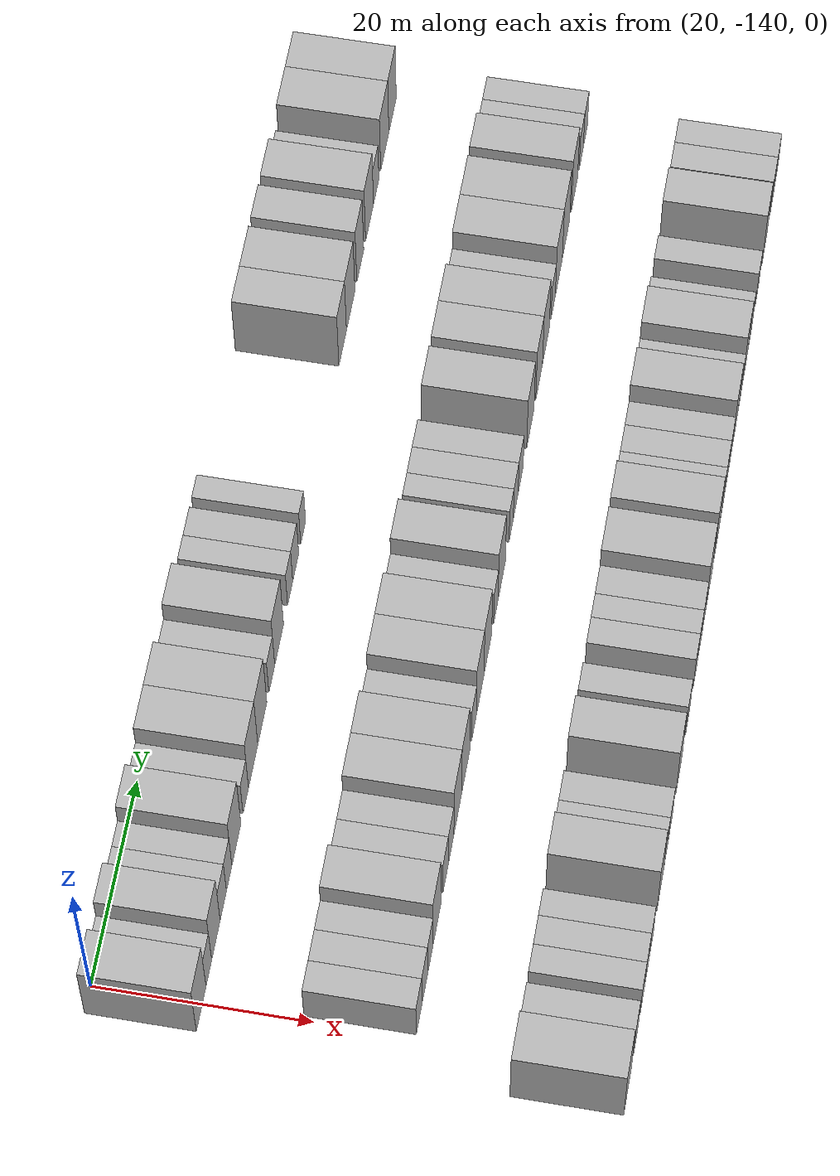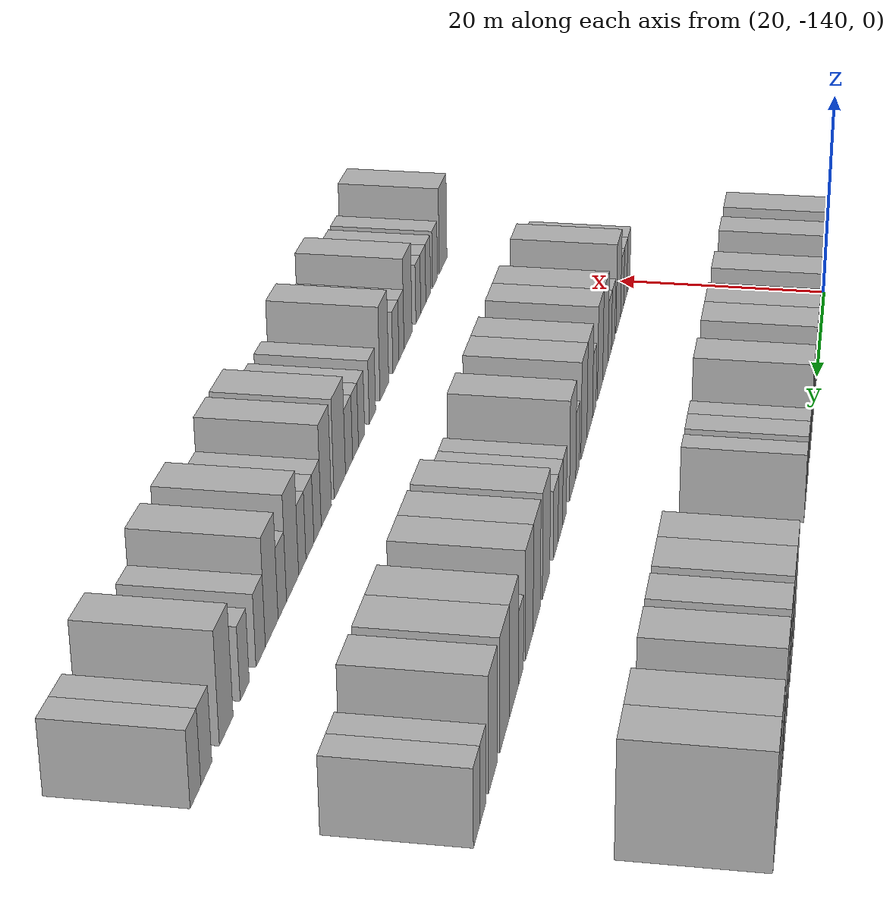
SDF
<sdf version="1.6">
 <world name="default">
  <model name="building_25">
   <static>1</static>
   <pose>25.0000 -140.4267 0 0.000000 0.000000 0.000000</pose>
   <link name="link">
    <pose>0 0 4.50 0 0 0</pose>
    <collision name="collision"><geometry><box><size>10.0000 4.2650 9.0000</size></box></geometry></collision>
    <visual name="visual">
     <cast_shadows>0</cast_shadows>
     <geometry><box><size>10.0000 4.2650 9.0000</size></box></geometry>
     <material>
      <script>
       <uri>model://HANNAS_wall/materials/scripts</uri>
       <uri>model://HANNAS_wall/materials/textures</uri>
       <name>vrc/HANNAS_wall</name>
      </script>
     </material>
    </visual>
   </link>
  </model>
  <model name="building_26">
   <static>1</static>
   <pose>25.0000 -137.0217 0 0.000000 0.000000 0.000000</pose>
   <link name="link">
    <pose>0 0 3.00 0 0 0</pose>
    <collision name="collision"><geometry><box><size>10.0000 2.5450 6.0000</size></box></geometry></collision>
    <visual name="visual">
     <cast_shadows>0</cast_shadows>
     <geometry><box><size>10.0000 2.5450 6.0000</size></box></geometry>
     <material>
      <script>
       <uri>model://HANNAS_wall/materials/scripts</uri>
       <uri>model://HANNAS_wall/materials/textures</uri>
       <name>vrc/HANNAS_wall</name>
      </script>
     </material>
    </visual>
   </link>
  </model>
  <model name="building_27">
   <static>1</static>
   <pose>25.0000 -133.8552 0 0.000000 0.000000 0.000000</pose>
   <link name="link">
    <pose>0 0 4.50 0 0 0</pose>
    <collision name="collision"><geometry><box><size>10.0000 3.7879 9.0000</size></box></geometry></collision>
    <visual name="visual">
     <cast_shadows>0</cast_shadows>
     <geometry><box><size>10.0000 3.7879 9.0000</size></box></geometry>
     <material>
      <script>
       <uri>model://HANNAS_wall/materials/scripts</uri>
       <uri>model://HANNAS_wall/materials/textures</uri>
       <name>vrc/HANNAS_wall</name>
      </script>
     </material>
    </visual>
   </link>
  </model>
  <model name="building_28">
   <static>1</static>
   <pose>25.0000 -130.5221 0 0.000000 0.000000 0.000000</pose>
   <link name="link">
    <pose>0 0 3.00 0 0 0</pose>
    <collision name="collision"><geometry><box><size>10.0000 2.8782 6.0000</size></box></geometry></collision>
    <visual name="visual">
     <cast_shadows>0</cast_shadows>
     <geometry><box><size>10.0000 2.8782 6.0000</size></box></geometry>
     <material>
      <script>
       <uri>model://HANNAS_wall/materials/scripts</uri>
       <uri>model://HANNAS_wall/materials/textures</uri>
       <name>vrc/HANNAS_wall</name>
      </script>
     </material>
    </visual>
   </link>
  </model>
  <model name="building_29">
   <static>1</static>
   <pose>25.0000 -127.8385 0 0.000000 0.000000 0.000000</pose>
   <link name="link">
    <pose>0 0 3.00 0 0 0</pose>
    <collision name="collision"><geometry><box><size>10.0000 2.4891 6.0000</size></box></geometry></collision>
    <visual name="visual">
     <cast_shadows>0</cast_shadows>
     <geometry><box><size>10.0000 2.4891 6.0000</size></box></geometry>
     <material>
      <script>
       <uri>model://HANNAS_wall/materials/scripts</uri>
       <uri>model://HANNAS_wall/materials/textures</uri>
       <name>vrc/HANNAS_wall</name>
      </script>
     </material>
    </visual>
   </link>
  </model>
  <model name="building_30">
   <static>1</static>
   <pose>25.0000 -124.5212 0 0.000000 0.000000 0.000000</pose>
   <link name="link">
    <pose>0 0 4.50 0 0 0</pose>
    <collision name="collision"><geometry><box><size>10.0000 4.1453 9.0000</size></box></geometry></collision>
    <visual name="visual">
     <cast_shadows>0</cast_shadows>
     <geometry><box><size>10.0000 4.1453 9.0000</size></box></geometry>
     <material>
      <script>
       <uri>model://HANNAS_wall/materials/scripts</uri>
       <uri>model://HANNAS_wall/materials/textures</uri>
       <name>vrc/HANNAS_wall</name>
      </script>
     </material>
    </visual>
   </link>
  </model>
  <model name="building_31">
   <static>1</static>
   <pose>25.0000 -120.1653 0 0.000000 0.000000 0.000000</pose>
   <link name="link">
    <pose>0 0 3.00 0 0 0</pose>
    <collision name="collision"><geometry><box><size>10.0000 2.5666 6.0000</size></box></geometry></collision>
    <visual name="visual">
     <cast_shadows>0</cast_shadows>
     <geometry><box><size>10.0000 2.5666 6.0000</size></box></geometry>
     <material>
      <script>
       <uri>model://HANNAS_wall/materials/scripts</uri>
       <uri>model://HANNAS_wall/materials/textures</uri>
       <name>vrc/HANNAS_wall</name>
      </script>
     </material>
    </visual>
   </link>
  </model>
  <model name="building_32">
   <static>1</static>
   <pose>25.0000 -116.7060 0 0.000000 0.000000 0.000000</pose>
   <link name="link">
    <pose>0 0 4.50 0 0 0</pose>
    <collision name="collision"><geometry><box><size>10.0000 4.3518 9.0000</size></box></geometry></collision>
    <visual name="visual">
     <cast_shadows>0</cast_shadows>
     <geometry><box><size>10.0000 4.3518 9.0000</size></box></geometry>
     <material>
      <script>
       <uri>model://HANNAS_wall/materials/scripts</uri>
       <uri>model://HANNAS_wall/materials/textures</uri>
       <name>vrc/HANNAS_wall</name>
      </script>
     </material>
    </visual>
   </link>
  </model>
  <model name="building_33">
   <static>1</static>
   <pose>25.0000 -112.3912 0 0.000000 0.000000 0.000000</pose>
   <link name="link">
    <pose>0 0 4.50 0 0 0</pose>
    <collision name="collision"><geometry><box><size>10.0000 4.2779 9.0000</size></box></geometry></collision>
    <visual name="visual">
     <cast_shadows>0</cast_shadows>
     <geometry><box><size>10.0000 4.2779 9.0000</size></box></geometry>
     <material>
      <script>
       <uri>model://HANNAS_wall/materials/scripts</uri>
       <uri>model://HANNAS_wall/materials/textures</uri>
       <name>vrc/HANNAS_wall</name>
      </script>
     </material>
    </visual>
   </link>
  </model>
  <model name="building_34">
   <static>1</static>
   <pose>25.0000 -107.8504 0 0.000000 0.000000 0.000000</pose>
   <link name="link">
    <pose>0 0 3.00 0 0 0</pose>
    <collision name="collision"><geometry><box><size>10.0000 2.8036 6.0000</size></box></geometry></collision>
    <visual name="visual">
     <cast_shadows>0</cast_shadows>
     <geometry><box><size>10.0000 2.8036 6.0000</size></box></geometry>
     <material>
      <script>
       <uri>model://HANNAS_wall/materials/scripts</uri>
       <uri>model://HANNAS_wall/materials/textures</uri>
       <name>vrc/HANNAS_wall</name>
      </script>
     </material>
    </visual>
   </link>
  </model>
  <model name="building_35">
   <static>1</static>
   <pose>25.0000 -104.3303 0 0.000000 0.000000 0.000000</pose>
   <link name="link">
    <pose>0 0 4.50 0 0 0</pose>
    <collision name="collision"><geometry><box><size>10.0000 4.2367 9.0000</size></box></geometry></collision>
    <visual name="visual">
     <cast_shadows>0</cast_shadows>
     <geometry><box><size>10.0000 4.2367 9.0000</size></box></geometry>
     <material>
      <script>
       <uri>model://HANNAS_wall/materials/scripts</uri>
       <uri>model://HANNAS_wall/materials/textures</uri>
       <name>vrc/HANNAS_wall</name>
      </script>
     </material>
    </visual>
   </link>
  </model>
  <model name="building_36">
   <static>1</static>
   <pose>25.0000 -98.9672 0 0.000000 0.000000 0.000000</pose>
   <link name="link">
    <pose>0 0 3.00 0 0 0</pose>
    <collision name="collision"><geometry><box><size>10.0000 2.4895 6.0000</size></box></geometry></collision>
    <visual name="visual">
     <cast_shadows>0</cast_shadows>
     <geometry><box><size>10.0000 2.4895 6.0000</size></box></geometry>
     <material>
      <script>
       <uri>model://HANNAS_wall/materials/scripts</uri>
       <uri>model://HANNAS_wall/materials/textures</uri>
       <name>vrc/HANNAS_wall</name>
      </script>
     </material>
    </visual>
   </link>
  </model>
  <model name="building_37">
   <static>1</static>
   <pose>25.0000 -96.2437 0 0.000000 0.000000 0.000000</pose>
   <link name="link">
    <pose>0 0 3.00 0 0 0</pose>
    <collision name="collision"><geometry><box><size>10.0000 2.9575 6.0000</size></box></geometry></collision>
    <visual name="visual">
     <cast_shadows>0</cast_shadows>
     <geometry><box><size>10.0000 2.9575 6.0000</size></box></geometry>
     <material>
      <script>
       <uri>model://HANNAS_wall/materials/scripts</uri>
       <uri>model://HANNAS_wall/materials/textures</uri>
       <name>vrc/HANNAS_wall</name>
      </script>
     </material>
    </visual>
   </link>
  </model>
  <model name="building_38">
   <static>1</static>
   <pose>25.0000 -92.5641 0 0.000000 0.000000 0.000000</pose>
   <link name="link">
    <pose>0 0 3.00 0 0 0</pose>
    <collision name="collision"><geometry><box><size>10.0000 2.4018 6.0000</size></box></geometry></collision>
    <visual name="visual">
     <cast_shadows>0</cast_shadows>
     <geometry><box><size>10.0000 2.4018 6.0000</size></box></geometry>
     <material>
      <script>
       <uri>model://HANNAS_wall/materials/scripts</uri>
       <uri>model://HANNAS_wall/materials/textures</uri>
       <name>vrc/HANNAS_wall</name>
      </script>
     </material>
    </visual>
   </link>
  </model>
  <model name="building_39">
   <static>1</static>
   <pose>25.0000 -72.4263 0 0.000000 0.000000 0.000000</pose>
   <link name="link">
    <pose>0 0 4.50 0 0 0</pose>
    <collision name="collision"><geometry><box><size>10.0000 3.9579 9.0000</size></box></geometry></collision>
    <visual name="visual">
     <cast_shadows>0</cast_shadows>
     <geometry><box><size>10.0000 3.9579 9.0000</size></box></geometry>
     <material>
      <script>
       <uri>model://HANNAS_wall/materials/scripts</uri>
       <uri>model://HANNAS_wall/materials/textures</uri>
       <name>vrc/HANNAS_wall</name>
      </script>
     </material>
    </visual>
   </link>
  </model>
  <model name="building_40">
   <static>1</static>
   <pose>25.0000 -68.2231 0 0.000000 0.000000 0.000000</pose>
   <link name="link">
    <pose>0 0 4.50 0 0 0</pose>
    <collision name="collision"><geometry><box><size>10.0000 4.4485 9.0000</size></box></geometry></collision>
    <visual name="visual">
     <cast_shadows>0</cast_shadows>
     <geometry><box><size>10.0000 4.4485 9.0000</size></box></geometry>
     <material>
      <script>
       <uri>model://HANNAS_wall/materials/scripts</uri>
       <uri>model://HANNAS_wall/materials/textures</uri>
       <name>vrc/HANNAS_wall</name>
      </script>
     </material>
    </visual>
   </link>
  </model>
  <model name="building_41">
   <static>1</static>
   <pose>25.0000 -63.1592 0 0.000000 0.000000 0.000000</pose>
   <link name="link">
    <pose>0 0 4.50 0 0 0</pose>
    <collision name="collision"><geometry><box><size>10.0000 3.6792 9.0000</size></box></geometry></collision>
    <visual name="visual">
     <cast_shadows>0</cast_shadows>
     <geometry><box><size>10.0000 3.6792 9.0000</size></box></geometry>
     <material>
      <script>
       <uri>model://HANNAS_wall/materials/scripts</uri>
       <uri>model://HANNAS_wall/materials/textures</uri>
       <name>vrc/HANNAS_wall</name>
      </script>
     </material>
    </visual>
   </link>
  </model>
  <model name="building_42">
   <static>1</static>
   <pose>25.0000 -58.2063 0 0.000000 0.000000 0.000000</pose>
   <link name="link">
    <pose>0 0 4.50 0 0 0</pose>
    <collision name="collision"><geometry><box><size>10.0000 4.2266 9.0000</size></box></geometry></collision>
    <visual name="visual">
     <cast_shadows>0</cast_shadows>
     <geometry><box><size>10.0000 4.2266 9.0000</size></box></geometry>
     <material>
      <script>
       <uri>model://HANNAS_wall/materials/scripts</uri>
       <uri>model://HANNAS_wall/materials/textures</uri>
       <name>vrc/HANNAS_wall</name>
      </script>
     </material>
    </visual>
   </link>
  </model>
  <model name="building_43">
   <static>1</static>
   <pose>25.0000 -54.6282 0 0.000000 0.000000 0.000000</pose>
   <link name="link">
    <pose>0 0 3.00 0 0 0</pose>
    <collision name="collision"><geometry><box><size>10.0000 2.9298 6.0000</size></box></geometry></collision>
    <visual name="visual">
     <cast_shadows>0</cast_shadows>
     <geometry><box><size>10.0000 2.9298 6.0000</size></box></geometry>
     <material>
      <script>
       <uri>model://HANNAS_wall/materials/scripts</uri>
       <uri>model://HANNAS_wall/materials/textures</uri>
       <name>vrc/HANNAS_wall</name>
      </script>
     </material>
    </visual>
   </link>
  </model>
  <model name="building_44">
   <static>1</static>
   <pose>25.0000 -49.9291 0 0.000000 0.000000 0.000000</pose>
   <link name="link">
    <pose>0 0 4.50 0 0 0</pose>
    <collision name="collision"><geometry><box><size>10.0000 4.4683 9.0000</size></box></geometry></collision>
    <visual name="visual">
     <cast_shadows>0</cast_shadows>
     <geometry><box><size>10.0000 4.4683 9.0000</size></box></geometry>
     <material>
      <script>
       <uri>model://HANNAS_wall/materials/scripts</uri>
       <uri>model://HANNAS_wall/materials/textures</uri>
       <name>vrc/HANNAS_wall</name>
      </script>
     </material>
    </visual>
   </link>
  </model>
  <model name="building_45">
   <static>1</static>
   <pose>25.0000 -45.6569 0 0.000000 0.000000 0.000000</pose>
   <link name="link">
    <pose>0 0 4.50 0 0 0</pose>
    <collision name="collision"><geometry><box><size>10.0000 4.0762 9.0000</size></box></geometry></collision>
    <visual name="visual">
     <cast_shadows>0</cast_shadows>
     <geometry><box><size>10.0000 4.0762 9.0000</size></box></geometry>
     <material>
      <script>
       <uri>model://HANNAS_wall/materials/scripts</uri>
       <uri>model://HANNAS_wall/materials/textures</uri>
       <name>vrc/HANNAS_wall</name>
      </script>
     </material>
    </visual>
   </link>
  </model>
  <model name="building_140">
   <static>1</static>
   <pose>44.0000 -138.1181 0 0.000000 0.000000 0.000000</pose>
   <link name="link">
    <pose>0 0 3.00 0 0 0</pose>
    <collision name="collision"><geometry><box><size>10.0000 2.8771 6.0000</size></box></geometry></collision>
    <visual name="visual">
     <cast_shadows>0</cast_shadows>
     <geometry><box><size>10.0000 2.8771 6.0000</size></box></geometry>
     <material>
      <script>
       <uri>model://HANNAS_wall/materials/scripts</uri>
       <uri>model://HANNAS_wall/materials/textures</uri>
       <name>vrc/HANNAS_wall</name>
      </script>
     </material>
    </visual>
   </link>
  </model>
  <model name="building_141">
   <static>1</static>
   <pose>44.0000 -135.2116 0 0.000000 0.000000 0.000000</pose>
   <link name="link">
    <pose>0 0 3.00 0 0 0</pose>
    <collision name="collision"><geometry><box><size>10.0000 2.9359 6.0000</size></box></geometry></collision>
    <visual name="visual">
     <cast_shadows>0</cast_shadows>
     <geometry><box><size>10.0000 2.9359 6.0000</size></box></geometry>
     <material>
      <script>
       <uri>model://HANNAS_wall/materials/scripts</uri>
       <uri>model://HANNAS_wall/materials/textures</uri>
       <name>vrc/HANNAS_wall</name>
      </script>
     </material>
    </visual>
   </link>
  </model>
  <model name="building_142">
   <static>1</static>
   <pose>44.0000 -132.3615 0 0.000000 0.000000 0.000000</pose>
   <link name="link">
    <pose>0 0 3.00 0 0 0</pose>
    <collision name="collision"><geometry><box><size>10.0000 2.7642 6.0000</size></box></geometry></collision>
    <visual name="visual">
     <cast_shadows>0</cast_shadows>
     <geometry><box><size>10.0000 2.7642 6.0000</size></box></geometry>
     <material>
      <script>
       <uri>model://HANNAS_wall/materials/scripts</uri>
       <uri>model://HANNAS_wall/materials/textures</uri>
       <name>vrc/HANNAS_wall</name>
      </script>
     </material>
    </visual>
   </link>
  </model>
  <model name="building_143">
   <static>1</static>
   <pose>44.0000 -128.9558 0 0.000000 0.000000 0.000000</pose>
   <link name="link">
    <pose>0 0 4.50 0 0 0</pose>
    <collision name="collision"><geometry><box><size>10.0000 4.0472 9.0000</size></box></geometry></collision>
    <visual name="visual">
     <cast_shadows>0</cast_shadows>
     <geometry><box><size>10.0000 4.0472 9.0000</size></box></geometry>
     <material>
      <script>
       <uri>model://HANNAS_wall/materials/scripts</uri>
       <uri>model://HANNAS_wall/materials/textures</uri>
       <name>vrc/HANNAS_wall</name>
      </script>
     </material>
    </visual>
   </link>
  </model>
  <model name="building_144">
   <static>1</static>
   <pose>44.0000 -124.5202 0 0.000000 0.000000 0.000000</pose>
   <link name="link">
    <pose>0 0 3.00 0 0 0</pose>
    <collision name="collision"><geometry><box><size>10.0000 2.8241 6.0000</size></box></geometry></collision>
    <visual name="visual">
     <cast_shadows>0</cast_shadows>
     <geometry><box><size>10.0000 2.8241 6.0000</size></box></geometry>
     <material>
      <script>
       <uri>model://HANNAS_wall/materials/scripts</uri>
       <uri>model://HANNAS_wall/materials/textures</uri>
       <name>vrc/HANNAS_wall</name>
      </script>
     </material>
    </visual>
   </link>
  </model>
  <model name="building_145">
   <static>1</static>
   <pose>44.0000 -121.6784 0 0.000000 0.000000 0.000000</pose>
   <link name="link">
    <pose>0 0 3.00 0 0 0</pose>
    <collision name="collision"><geometry><box><size>10.0000 2.8595 6.0000</size></box></geometry></collision>
    <visual name="visual">
     <cast_shadows>0</cast_shadows>
     <geometry><box><size>10.0000 2.8595 6.0000</size></box></geometry>
     <material>
      <script>
       <uri>model://HANNAS_wall/materials/scripts</uri>
       <uri>model://HANNAS_wall/materials/textures</uri>
       <name>vrc/HANNAS_wall</name>
      </script>
     </material>
    </visual>
   </link>
  </model>
  <model name="building_146">
   <static>1</static>
   <pose>44.0000 -118.1230 0 0.000000 0.000000 0.000000</pose>
   <link name="link">
    <pose>0 0 4.50 0 0 0</pose>
    <collision name="collision"><geometry><box><size>10.0000 4.2513 9.0000</size></box></geometry></collision>
    <visual name="visual">
     <cast_shadows>0</cast_shadows>
     <geometry><box><size>10.0000 4.2513 9.0000</size></box></geometry>
     <material>
      <script>
       <uri>model://HANNAS_wall/materials/scripts</uri>
       <uri>model://HANNAS_wall/materials/textures</uri>
       <name>vrc/HANNAS_wall</name>
      </script>
     </material>
    </visual>
   </link>
  </model>
  <model name="building_147">
   <static>1</static>
   <pose>44.0000 -113.9360 0 0.000000 0.000000 0.000000</pose>
   <link name="link">
    <pose>0 0 4.50 0 0 0</pose>
    <collision name="collision"><geometry><box><size>10.0000 4.1228 9.0000</size></box></geometry></collision>
    <visual name="visual">
     <cast_shadows>0</cast_shadows>
     <geometry><box><size>10.0000 4.1228 9.0000</size></box></geometry>
     <material>
      <script>
       <uri>model://HANNAS_wall/materials/scripts</uri>
       <uri>model://HANNAS_wall/materials/textures</uri>
       <name>vrc/HANNAS_wall</name>
      </script>
     </material>
    </visual>
   </link>
  </model>
  <model name="building_148">
   <static>1</static>
   <pose>44.0000 -109.5327 0 0.000000 0.000000 0.000000</pose>
   <link name="link">
    <pose>0 0 3.00 0 0 0</pose>
    <collision name="collision"><geometry><box><size>10.0000 2.6839 6.0000</size></box></geometry></collision>
    <visual name="visual">
     <cast_shadows>0</cast_shadows>
     <geometry><box><size>10.0000 2.6839 6.0000</size></box></geometry>
     <material>
      <script>
       <uri>model://HANNAS_wall/materials/scripts</uri>
       <uri>model://HANNAS_wall/materials/textures</uri>
       <name>vrc/HANNAS_wall</name>
      </script>
     </material>
    </visual>
   </link>
  </model>
  <model name="building_149">
   <static>1</static>
   <pose>44.0000 -106.1340 0 0.000000 0.000000 0.000000</pose>
   <link name="link">
    <pose>0 0 4.50 0 0 0</pose>
    <collision name="collision"><geometry><box><size>10.0000 4.1134 9.0000</size></box></geometry></collision>
    <visual name="visual">
     <cast_shadows>0</cast_shadows>
     <geometry><box><size>10.0000 4.1134 9.0000</size></box></geometry>
     <material>
      <script>
       <uri>model://HANNAS_wall/materials/scripts</uri>
       <uri>model://HANNAS_wall/materials/textures</uri>
       <name>vrc/HANNAS_wall</name>
      </script>
     </material>
    </visual>
   </link>
  </model>
  <model name="building_150">
   <static>1</static>
   <pose>44.0000 -101.9868 0 0.000000 0.000000 0.000000</pose>
   <link name="link">
    <pose>0 0 4.50 0 0 0</pose>
    <collision name="collision"><geometry><box><size>10.0000 4.1810 9.0000</size></box></geometry></collision>
    <visual name="visual">
     <cast_shadows>0</cast_shadows>
     <geometry><box><size>10.0000 4.1810 9.0000</size></box></geometry>
     <material>
      <script>
       <uri>model://HANNAS_wall/materials/scripts</uri>
       <uri>model://HANNAS_wall/materials/textures</uri>
       <name>vrc/HANNAS_wall</name>
      </script>
     </material>
    </visual>
   </link>
  </model>
  <model name="building_151">
   <static>1</static>
   <pose>44.0000 -97.6276 0 0.000000 0.000000 0.000000</pose>
   <link name="link">
    <pose>0 0 3.00 0 0 0</pose>
    <collision name="collision"><geometry><box><size>10.0000 2.5373 6.0000</size></box></geometry></collision>
    <visual name="visual">
     <cast_shadows>0</cast_shadows>
     <geometry><box><size>10.0000 2.5373 6.0000</size></box></geometry>
     <material>
      <script>
       <uri>model://HANNAS_wall/materials/scripts</uri>
       <uri>model://HANNAS_wall/materials/textures</uri>
       <name>vrc/HANNAS_wall</name>
      </script>
     </material>
    </visual>
   </link>
  </model>
  <model name="building_152">
   <static>1</static>
   <pose>44.0000 -94.3004 0 0.000000 0.000000 0.000000</pose>
   <link name="link">
    <pose>0 0 4.50 0 0 0</pose>
    <collision name="collision"><geometry><box><size>10.0000 4.1171 9.0000</size></box></geometry></collision>
    <visual name="visual">
     <cast_shadows>0</cast_shadows>
     <geometry><box><size>10.0000 4.1171 9.0000</size></box></geometry>
     <material>
      <script>
       <uri>model://HANNAS_wall/materials/scripts</uri>
       <uri>model://HANNAS_wall/materials/textures</uri>
       <name>vrc/HANNAS_wall</name>
      </script>
     </material>
    </visual>
   </link>
  </model>
  <model name="building_153">
   <static>1</static>
   <pose>44.0000 -89.0383 0 0.000000 0.000000 0.000000</pose>
   <link name="link">
    <pose>0 0 3.00 0 0 0</pose>
    <collision name="collision"><geometry><box><size>10.0000 2.4071 6.0000</size></box></geometry></collision>
    <visual name="visual">
     <cast_shadows>0</cast_shadows>
     <geometry><box><size>10.0000 2.4071 6.0000</size></box></geometry>
     <material>
      <script>
       <uri>model://HANNAS_wall/materials/scripts</uri>
       <uri>model://HANNAS_wall/materials/textures</uri>
       <name>vrc/HANNAS_wall</name>
      </script>
     </material>
    </visual>
   </link>
  </model>
  <model name="building_154">
   <static>1</static>
   <pose>44.0000 -86.4532 0 0.000000 0.000000 0.000000</pose>
   <link name="link">
    <pose>0 0 3.00 0 0 0</pose>
    <collision name="collision"><geometry><box><size>10.0000 2.7630 6.0000</size></box></geometry></collision>
    <visual name="visual">
     <cast_shadows>0</cast_shadows>
     <geometry><box><size>10.0000 2.7630 6.0000</size></box></geometry>
     <material>
      <script>
       <uri>model://HANNAS_wall/materials/scripts</uri>
       <uri>model://HANNAS_wall/materials/textures</uri>
       <name>vrc/HANNAS_wall</name>
      </script>
     </material>
    </visual>
   </link>
  </model>
  <model name="building_155">
   <static>1</static>
   <pose>44.0000 -83.6217 0 0.000000 0.000000 0.000000</pose>
   <link name="link">
    <pose>0 0 3.00 0 0 0</pose>
    <collision name="collision"><geometry><box><size>10.0000 2.9000 6.0000</size></box></geometry></collision>
    <visual name="visual">
     <cast_shadows>0</cast_shadows>
     <geometry><box><size>10.0000 2.9000 6.0000</size></box></geometry>
     <material>
      <script>
       <uri>model://HANNAS_wall/materials/scripts</uri>
       <uri>model://HANNAS_wall/materials/textures</uri>
       <name>vrc/HANNAS_wall</name>
      </script>
     </material>
    </visual>
   </link>
  </model>
  <model name="building_156">
   <static>1</static>
   <pose>44.0000 -78.0498 0 0.000000 0.000000 0.000000</pose>
   <link name="link">
    <pose>0 0 4.50 0 0 0</pose>
    <collision name="collision"><geometry><box><size>10.0000 4.2439 9.0000</size></box></geometry></collision>
    <visual name="visual">
     <cast_shadows>0</cast_shadows>
     <geometry><box><size>10.0000 4.2439 9.0000</size></box></geometry>
     <material>
      <script>
       <uri>model://HANNAS_wall/materials/scripts</uri>
       <uri>model://HANNAS_wall/materials/textures</uri>
       <name>vrc/HANNAS_wall</name>
      </script>
     </material>
    </visual>
   </link>
  </model>
  <model name="building_157">
   <static>1</static>
   <pose>44.0000 -72.9426 0 0.000000 0.000000 0.000000</pose>
   <link name="link">
    <pose>0 0 4.50 0 0 0</pose>
    <collision name="collision"><geometry><box><size>10.0000 3.9704 9.0000</size></box></geometry></collision>
    <visual name="visual">
     <cast_shadows>0</cast_shadows>
     <geometry><box><size>10.0000 3.9704 9.0000</size></box></geometry>
     <material>
      <script>
       <uri>model://HANNAS_wall/materials/scripts</uri>
       <uri>model://HANNAS_wall/materials/textures</uri>
       <name>vrc/HANNAS_wall</name>
      </script>
     </material>
    </visual>
   </link>
  </model>
  <model name="building_158">
   <static>1</static>
   <pose>44.0000 -68.9450 0 0.000000 0.000000 0.000000</pose>
   <link name="link">
    <pose>0 0 4.50 0 0 0</pose>
    <collision name="collision"><geometry><box><size>10.0000 4.0248 9.0000</size></box></geometry></collision>
    <visual name="visual">
     <cast_shadows>0</cast_shadows>
     <geometry><box><size>10.0000 4.0248 9.0000</size></box></geometry>
     <material>
      <script>
       <uri>model://HANNAS_wall/materials/scripts</uri>
       <uri>model://HANNAS_wall/materials/textures</uri>
       <name>vrc/HANNAS_wall</name>
      </script>
     </material>
    </visual>
   </link>
  </model>
  <model name="building_159">
   <static>1</static>
   <pose>44.0000 -64.6442 0 0.000000 0.000000 0.000000</pose>
   <link name="link">
    <pose>0 0 3.00 0 0 0</pose>
    <collision name="collision"><geometry><box><size>10.0000 2.5770 6.0000</size></box></geometry></collision>
    <visual name="visual">
     <cast_shadows>0</cast_shadows>
     <geometry><box><size>10.0000 2.5770 6.0000</size></box></geometry>
     <material>
      <script>
       <uri>model://HANNAS_wall/materials/scripts</uri>
       <uri>model://HANNAS_wall/materials/textures</uri>
       <name>vrc/HANNAS_wall</name>
      </script>
     </material>
    </visual>
   </link>
  </model>
  <model name="building_160">
   <static>1</static>
   <pose>44.0000 -61.2278 0 0.000000 0.000000 0.000000</pose>
   <link name="link">
    <pose>0 0 4.50 0 0 0</pose>
    <collision name="collision"><geometry><box><size>10.0000 4.2557 9.0000</size></box></geometry></collision>
    <visual name="visual">
     <cast_shadows>0</cast_shadows>
     <geometry><box><size>10.0000 4.2557 9.0000</size></box></geometry>
     <material>
      <script>
       <uri>model://HANNAS_wall/materials/scripts</uri>
       <uri>model://HANNAS_wall/materials/textures</uri>
       <name>vrc/HANNAS_wall</name>
      </script>
     </material>
    </visual>
   </link>
  </model>
  <model name="building_161">
   <static>1</static>
   <pose>44.0000 -56.8940 0 0.000000 0.000000 0.000000</pose>
   <link name="link">
    <pose>0 0 4.50 0 0 0</pose>
    <collision name="collision"><geometry><box><size>10.0000 4.4119 9.0000</size></box></geometry></collision>
    <visual name="visual">
     <cast_shadows>0</cast_shadows>
     <geometry><box><size>10.0000 4.4119 9.0000</size></box></geometry>
     <material>
      <script>
       <uri>model://HANNAS_wall/materials/scripts</uri>
       <uri>model://HANNAS_wall/materials/textures</uri>
       <name>vrc/HANNAS_wall</name>
      </script>
     </material>
    </visual>
   </link>
  </model>
  <model name="building_162">
   <static>1</static>
   <pose>44.0000 -51.7333 0 0.000000 0.000000 0.000000</pose>
   <link name="link">
    <pose>0 0 4.50 0 0 0</pose>
    <collision name="collision"><geometry><box><size>10.0000 3.9095 9.0000</size></box></geometry></collision>
    <visual name="visual">
     <cast_shadows>0</cast_shadows>
     <geometry><box><size>10.0000 3.9095 9.0000</size></box></geometry>
     <material>
      <script>
       <uri>model://HANNAS_wall/materials/scripts</uri>
       <uri>model://HANNAS_wall/materials/textures</uri>
       <name>vrc/HANNAS_wall</name>
      </script>
     </material>
    </visual>
   </link>
  </model>
  <model name="building_163">
   <static>1</static>
   <pose>44.0000 -47.4882 0 0.000000 0.000000 0.000000</pose>
   <link name="link">
    <pose>0 0 3.00 0 0 0</pose>
    <collision name="collision"><geometry><box><size>10.0000 2.5806 6.0000</size></box></geometry></collision>
    <visual name="visual">
     <cast_shadows>0</cast_shadows>
     <geometry><box><size>10.0000 2.5806 6.0000</size></box></geometry>
     <material>
      <script>
       <uri>model://HANNAS_wall/materials/scripts</uri>
       <uri>model://HANNAS_wall/materials/textures</uri>
       <name>vrc/HANNAS_wall</name>
      </script>
     </material>
    </visual>
   </link>
  </model>
  <model name="building_164">
   <static>1</static>
   <pose>44.0000 -44.8815 0 0.000000 0.000000 0.000000</pose>
   <link name="link">
    <pose>0 0 3.00 0 0 0</pose>
    <collision name="collision"><geometry><box><size>10.0000 2.6329 6.0000</size></box></geometry></collision>
    <visual name="visual">
     <cast_shadows>0</cast_shadows>
     <geometry><box><size>10.0000 2.6329 6.0000</size></box></geometry>
     <material>
      <script>
       <uri>model://HANNAS_wall/materials/scripts</uri>
       <uri>model://HANNAS_wall/materials/textures</uri>
       <name>vrc/HANNAS_wall</name>
      </script>
     </material>
    </visual>
   </link>
  </model>
  <model name="building_261">
   <static>1</static>
   <pose>63.0000 -141.5591 0 0.000000 0.000000 0.000000</pose>
   <link name="link">
    <pose>0 0 4.50 0 0 0</pose>
    <collision name="collision"><geometry><box><size>10.0000 4.4908 9.0000</size></box></geometry></collision>
    <visual name="visual">
     <cast_shadows>0</cast_shadows>
     <geometry><box><size>10.0000 4.4908 9.0000</size></box></geometry>
     <material>
      <script>
       <uri>model://HANNAS_wall/materials/scripts</uri>
       <uri>model://HANNAS_wall/materials/textures</uri>
       <name>vrc/HANNAS_wall</name>
      </script>
     </material>
    </visual>
   </link>
  </model>
  <model name="building_262">
   <static>1</static>
   <pose>63.0000 -136.8843 0 0.000000 0.000000 0.000000</pose>
   <link name="link">
    <pose>0 0 3.00 0 0 0</pose>
    <collision name="collision"><geometry><box><size>10.0000 2.8590 6.0000</size></box></geometry></collision>
    <visual name="visual">
     <cast_shadows>0</cast_shadows>
     <geometry><box><size>10.0000 2.8590 6.0000</size></box></geometry>
     <material>
      <script>
       <uri>model://HANNAS_wall/materials/scripts</uri>
       <uri>model://HANNAS_wall/materials/textures</uri>
       <name>vrc/HANNAS_wall</name>
      </script>
     </material>
    </visual>
   </link>
  </model>
  <model name="building_263">
   <static>1</static>
   <pose>63.0000 -133.1376 0 0.000000 0.000000 0.000000</pose>
   <link name="link">
    <pose>0 0 3.00 0 0 0</pose>
    <collision name="collision"><geometry><box><size>10.0000 2.6343 6.0000</size></box></geometry></collision>
    <visual name="visual">
     <cast_shadows>0</cast_shadows>
     <geometry><box><size>10.0000 2.6343 6.0000</size></box></geometry>
     <material>
      <script>
       <uri>model://HANNAS_wall/materials/scripts</uri>
       <uri>model://HANNAS_wall/materials/textures</uri>
       <name>vrc/HANNAS_wall</name>
      </script>
     </material>
    </visual>
   </link>
  </model>
  <model name="building_264">
   <static>1</static>
   <pose>63.0000 -130.4550 0 0.000000 0.000000 0.000000</pose>
   <link name="link">
    <pose>0 0 3.00 0 0 0</pose>
    <collision name="collision"><geometry><box><size>10.0000 2.7309 6.0000</size></box></geometry></collision>
    <visual name="visual">
     <cast_shadows>0</cast_shadows>
     <geometry><box><size>10.0000 2.7309 6.0000</size></box></geometry>
     <material>
      <script>
       <uri>model://HANNAS_wall/materials/scripts</uri>
       <uri>model://HANNAS_wall/materials/textures</uri>
       <name>vrc/HANNAS_wall</name>
      </script>
     </material>
    </visual>
   </link>
  </model>
  <model name="building_265">
   <static>1</static>
   <pose>63.0000 -127.8124 0 0.000000 0.000000 0.000000</pose>
   <link name="link">
    <pose>0 0 3.00 0 0 0</pose>
    <collision name="collision"><geometry><box><size>10.0000 2.5542 6.0000</size></box></geometry></collision>
    <visual name="visual">
     <cast_shadows>0</cast_shadows>
     <geometry><box><size>10.0000 2.5542 6.0000</size></box></geometry>
     <material>
      <script>
       <uri>model://HANNAS_wall/materials/scripts</uri>
       <uri>model://HANNAS_wall/materials/textures</uri>
       <name>vrc/HANNAS_wall</name>
      </script>
     </material>
    </visual>
   </link>
  </model>
  <model name="building_266">
   <static>1</static>
   <pose>63.0000 -122.5089 0 0.000000 0.000000 0.000000</pose>
   <link name="link">
    <pose>0 0 4.50 0 0 0</pose>
    <collision name="collision"><geometry><box><size>10.0000 4.0529 9.0000</size></box></geometry></collision>
    <visual name="visual">
     <cast_shadows>0</cast_shadows>
     <geometry><box><size>10.0000 4.0529 9.0000</size></box></geometry>
     <material>
      <script>
       <uri>model://HANNAS_wall/materials/scripts</uri>
       <uri>model://HANNAS_wall/materials/textures</uri>
       <name>vrc/HANNAS_wall</name>
      </script>
     </material>
    </visual>
   </link>
  </model>
  <model name="building_267">
   <static>1</static>
   <pose>63.0000 -119.2140 0 0.000000 0.000000 0.000000</pose>
   <link name="link">
    <pose>0 0 3.00 0 0 0</pose>
    <collision name="collision"><geometry><box><size>10.0000 2.5368 6.0000</size></box></geometry></collision>
    <visual name="visual">
     <cast_shadows>0</cast_shadows>
     <geometry><box><size>10.0000 2.5368 6.0000</size></box></geometry>
     <material>
      <script>
       <uri>model://HANNAS_wall/materials/scripts</uri>
       <uri>model://HANNAS_wall/materials/textures</uri>
       <name>vrc/HANNAS_wall</name>
      </script>
     </material>
    </visual>
   </link>
  </model>
  <model name="building_268">
   <static>1</static>
   <pose>63.0000 -116.4974 0 0.000000 0.000000 0.000000</pose>
   <link name="link">
    <pose>0 0 3.00 0 0 0</pose>
    <collision name="collision"><geometry><box><size>10.0000 2.8965 6.0000</size></box></geometry></collision>
    <visual name="visual">
     <cast_shadows>0</cast_shadows>
     <geometry><box><size>10.0000 2.8965 6.0000</size></box></geometry>
     <material>
      <script>
       <uri>model://HANNAS_wall/materials/scripts</uri>
       <uri>model://HANNAS_wall/materials/textures</uri>
       <name>vrc/HANNAS_wall</name>
      </script>
     </material>
    </visual>
   </link>
  </model>
  <model name="building_269">
   <static>1</static>
   <pose>63.0000 -111.0389 0 0.000000 0.000000 0.000000</pose>
   <link name="link">
    <pose>0 0 4.50 0 0 0</pose>
    <collision name="collision"><geometry><box><size>10.0000 4.0205 9.0000</size></box></geometry></collision>
    <visual name="visual">
     <cast_shadows>0</cast_shadows>
     <geometry><box><size>10.0000 4.0205 9.0000</size></box></geometry>
     <material>
      <script>
       <uri>model://HANNAS_wall/materials/scripts</uri>
       <uri>model://HANNAS_wall/materials/textures</uri>
       <name>vrc/HANNAS_wall</name>
      </script>
     </material>
    </visual>
   </link>
  </model>
  <model name="building_270">
   <static>1</static>
   <pose>63.0000 -105.6365 0 0.000000 0.000000 0.000000</pose>
   <link name="link">
    <pose>0 0 3.00 0 0 0</pose>
    <collision name="collision"><geometry><box><size>10.0000 2.7842 6.0000</size></box></geometry></collision>
    <visual name="visual">
     <cast_shadows>0</cast_shadows>
     <geometry><box><size>10.0000 2.7842 6.0000</size></box></geometry>
     <material>
      <script>
       <uri>model://HANNAS_wall/materials/scripts</uri>
       <uri>model://HANNAS_wall/materials/textures</uri>
       <name>vrc/HANNAS_wall</name>
      </script>
     </material>
    </visual>
   </link>
  </model>
  <model name="building_271">
   <static>1</static>
   <pose>63.0000 -100.9207 0 0.000000 0.000000 0.000000</pose>
   <link name="link">
    <pose>0 0 3.00 0 0 0</pose>
    <collision name="collision"><geometry><box><size>10.0000 2.6475 6.0000</size></box></geometry></collision>
    <visual name="visual">
     <cast_shadows>0</cast_shadows>
     <geometry><box><size>10.0000 2.6475 6.0000</size></box></geometry>
     <material>
      <script>
       <uri>model://HANNAS_wall/materials/scripts</uri>
       <uri>model://HANNAS_wall/materials/textures</uri>
       <name>vrc/HANNAS_wall</name>
      </script>
     </material>
    </visual>
   </link>
  </model>
  <model name="building_272">
   <static>1</static>
   <pose>63.0000 -98.3806 0 0.000000 0.000000 0.000000</pose>
   <link name="link">
    <pose>0 0 3.00 0 0 0</pose>
    <collision name="collision"><geometry><box><size>10.0000 2.4328 6.0000</size></box></geometry></collision>
    <visual name="visual">
     <cast_shadows>0</cast_shadows>
     <geometry><box><size>10.0000 2.4328 6.0000</size></box></geometry>
     <material>
      <script>
       <uri>model://HANNAS_wall/materials/scripts</uri>
       <uri>model://HANNAS_wall/materials/textures</uri>
       <name>vrc/HANNAS_wall</name>
      </script>
     </material>
    </visual>
   </link>
  </model>
  <model name="building_273">
   <static>1</static>
   <pose>63.0000 -95.7170 0 0.000000 0.000000 0.000000</pose>
   <link name="link">
    <pose>0 0 3.00 0 0 0</pose>
    <collision name="collision"><geometry><box><size>10.0000 2.8945 6.0000</size></box></geometry></collision>
    <visual name="visual">
     <cast_shadows>0</cast_shadows>
     <geometry><box><size>10.0000 2.8945 6.0000</size></box></geometry>
     <material>
      <script>
       <uri>model://HANNAS_wall/materials/scripts</uri>
       <uri>model://HANNAS_wall/materials/textures</uri>
       <name>vrc/HANNAS_wall</name>
      </script>
     </material>
    </visual>
   </link>
  </model>
  <model name="building_274">
   <static>1</static>
   <pose>63.0000 -92.0198 0 0.000000 0.000000 0.000000</pose>
   <link name="link">
    <pose>0 0 4.50 0 0 0</pose>
    <collision name="collision"><geometry><box><size>10.0000 4.4999 9.0000</size></box></geometry></collision>
    <visual name="visual">
     <cast_shadows>0</cast_shadows>
     <geometry><box><size>10.0000 4.4999 9.0000</size></box></geometry>
     <material>
      <script>
       <uri>model://HANNAS_wall/materials/scripts</uri>
       <uri>model://HANNAS_wall/materials/textures</uri>
       <name>vrc/HANNAS_wall</name>
      </script>
     </material>
    </visual>
   </link>
  </model>
  <model name="building_275">
   <static>1</static>
   <pose>63.0000 -86.8536 0 0.000000 0.000000 0.000000</pose>
   <link name="link">
    <pose>0 0 4.50 0 0 0</pose>
    <collision name="collision"><geometry><box><size>10.0000 3.8324 9.0000</size></box></geometry></collision>
    <visual name="visual">
     <cast_shadows>0</cast_shadows>
     <geometry><box><size>10.0000 3.8324 9.0000</size></box></geometry>
     <material>
      <script>
       <uri>model://HANNAS_wall/materials/scripts</uri>
       <uri>model://HANNAS_wall/materials/textures</uri>
       <name>vrc/HANNAS_wall</name>
      </script>
     </material>
    </visual>
   </link>
  </model>
  <model name="building_276">
   <static>1</static>
   <pose>63.0000 -83.5926 0 0.000000 0.000000 0.000000</pose>
   <link name="link">
    <pose>0 0 3.00 0 0 0</pose>
    <collision name="collision"><geometry><box><size>10.0000 2.6896 6.0000</size></box></geometry></collision>
    <visual name="visual">
     <cast_shadows>0</cast_shadows>
     <geometry><box><size>10.0000 2.6896 6.0000</size></box></geometry>
     <material>
      <script>
       <uri>model://HANNAS_wall/materials/scripts</uri>
       <uri>model://HANNAS_wall/materials/textures</uri>
       <name>vrc/HANNAS_wall</name>
      </script>
     </material>
    </visual>
   </link>
  </model>
  <model name="building_277">
   <static>1</static>
   <pose>63.0000 -80.8229 0 0.000000 0.000000 0.000000</pose>
   <link name="link">
    <pose>0 0 3.00 0 0 0</pose>
    <collision name="collision"><geometry><box><size>10.0000 2.8499 6.0000</size></box></geometry></collision>
    <visual name="visual">
     <cast_shadows>0</cast_shadows>
     <geometry><box><size>10.0000 2.8499 6.0000</size></box></geometry>
     <material>
      <script>
       <uri>model://HANNAS_wall/materials/scripts</uri>
       <uri>model://HANNAS_wall/materials/textures</uri>
       <name>vrc/HANNAS_wall</name>
      </script>
     </material>
    </visual>
   </link>
  </model>
  <model name="building_278">
   <static>1</static>
   <pose>63.0000 -78.1330 0 0.000000 0.000000 0.000000</pose>
   <link name="link">
    <pose>0 0 3.00 0 0 0</pose>
    <collision name="collision"><geometry><box><size>10.0000 2.5300 6.0000</size></box></geometry></collision>
    <visual name="visual">
     <cast_shadows>0</cast_shadows>
     <geometry><box><size>10.0000 2.5300 6.0000</size></box></geometry>
     <material>
      <script>
       <uri>model://HANNAS_wall/materials/scripts</uri>
       <uri>model://HANNAS_wall/materials/textures</uri>
       <name>vrc/HANNAS_wall</name>
      </script>
     </material>
    </visual>
   </link>
  </model>
  <model name="building_279">
   <static>1</static>
   <pose>63.0000 -74.8306 0 0.000000 0.000000 0.000000</pose>
   <link name="link">
    <pose>0 0 4.50 0 0 0</pose>
    <collision name="collision"><geometry><box><size>10.0000 4.0748 9.0000</size></box></geometry></collision>
    <visual name="visual">
     <cast_shadows>0</cast_shadows>
     <geometry><box><size>10.0000 4.0748 9.0000</size></box></geometry>
     <material>
      <script>
       <uri>model://HANNAS_wall/materials/scripts</uri>
       <uri>model://HANNAS_wall/materials/textures</uri>
       <name>vrc/HANNAS_wall</name>
      </script>
     </material>
    </visual>
   </link>
  </model>
  <model name="building_280">
   <static>1</static>
   <pose>63.0000 -71.4223 0 0.000000 0.000000 0.000000</pose>
   <link name="link">
    <pose>0 0 3.00 0 0 0</pose>
    <collision name="collision"><geometry><box><size>10.0000 2.7417 6.0000</size></box></geometry></collision>
    <visual name="visual">
     <cast_shadows>0</cast_shadows>
     <geometry><box><size>10.0000 2.7417 6.0000</size></box></geometry>
     <material>
      <script>
       <uri>model://HANNAS_wall/materials/scripts</uri>
       <uri>model://HANNAS_wall/materials/textures</uri>
       <name>vrc/HANNAS_wall</name>
      </script>
     </material>
    </visual>
   </link>
  </model>
  <model name="building_281">
   <static>1</static>
   <pose>63.0000 -68.0458 0 0.000000 0.000000 0.000000</pose>
   <link name="link">
    <pose>0 0 4.50 0 0 0</pose>
    <collision name="collision"><geometry><box><size>10.0000 4.0112 9.0000</size></box></geometry></collision>
    <visual name="visual">
     <cast_shadows>0</cast_shadows>
     <geometry><box><size>10.0000 4.0112 9.0000</size></box></geometry>
     <material>
      <script>
       <uri>model://HANNAS_wall/materials/scripts</uri>
       <uri>model://HANNAS_wall/materials/textures</uri>
       <name>vrc/HANNAS_wall</name>
      </script>
     </material>
    </visual>
   </link>
  </model>
  <model name="building_282">
   <static>1</static>
   <pose>63.0000 -64.6060 0 0.000000 0.000000 0.000000</pose>
   <link name="link">
    <pose>0 0 3.00 0 0 0</pose>
    <collision name="collision"><geometry><box><size>10.0000 2.8684 6.0000</size></box></geometry></collision>
    <visual name="visual">
     <cast_shadows>0</cast_shadows>
     <geometry><box><size>10.0000 2.8684 6.0000</size></box></geometry>
     <material>
      <script>
       <uri>model://HANNAS_wall/materials/scripts</uri>
       <uri>model://HANNAS_wall/materials/textures</uri>
       <name>vrc/HANNAS_wall</name>
      </script>
     </material>
    </visual>
   </link>
  </model>
  <model name="building_283">
   <static>1</static>
   <pose>63.0000 -59.8634 0 0.000000 0.000000 0.000000</pose>
   <link name="link">
    <pose>0 0 3.00 0 0 0</pose>
    <collision name="collision"><geometry><box><size>10.0000 2.6169 6.0000</size></box></geometry></collision>
    <visual name="visual">
     <cast_shadows>0</cast_shadows>
     <geometry><box><size>10.0000 2.6169 6.0000</size></box></geometry>
     <material>
      <script>
       <uri>model://HANNAS_wall/materials/scripts</uri>
       <uri>model://HANNAS_wall/materials/textures</uri>
       <name>vrc/HANNAS_wall</name>
      </script>
     </material>
    </visual>
   </link>
  </model>
  <model name="building_284">
   <static>1</static>
   <pose>63.0000 -54.6612 0 0.000000 0.000000 0.000000</pose>
   <link name="link">
    <pose>0 0 4.50 0 0 0</pose>
    <collision name="collision"><geometry><box><size>10.0000 3.7875 9.0000</size></box></geometry></collision>
    <visual name="visual">
     <cast_shadows>0</cast_shadows>
     <geometry><box><size>10.0000 3.7875 9.0000</size></box></geometry>
     <material>
      <script>
       <uri>model://HANNAS_wall/materials/scripts</uri>
       <uri>model://HANNAS_wall/materials/textures</uri>
       <name>vrc/HANNAS_wall</name>
      </script>
     </material>
    </visual>
   </link>
  </model>
  <model name="building_285">
   <static>1</static>
   <pose>63.0000 -49.3370 0 0.000000 0.000000 0.000000</pose>
   <link name="link">
    <pose>0 0 3.00 0 0 0</pose>
    <collision name="collision"><geometry><box><size>10.0000 2.8609 6.0000</size></box></geometry></collision>
    <visual name="visual">
     <cast_shadows>0</cast_shadows>
     <geometry><box><size>10.0000 2.8609 6.0000</size></box></geometry>
     <material>
      <script>
       <uri>model://HANNAS_wall/materials/scripts</uri>
       <uri>model://HANNAS_wall/materials/textures</uri>
       <name>vrc/HANNAS_wall</name>
      </script>
     </material>
    </visual>
   </link>
  </model>
  <model name="building_286">
   <static>1</static>
   <pose>63.0000 -46.5554 0 0.000000 0.000000 0.000000</pose>
   <link name="link">
    <pose>0 0 3.00 0 0 0</pose>
    <collision name="collision"><geometry><box><size>10.0000 2.7024 6.0000</size></box></geometry></collision>
    <visual name="visual">
     <cast_shadows>0</cast_shadows>
     <geometry><box><size>10.0000 2.7024 6.0000</size></box></geometry>
     <material>
      <script>
       <uri>model://HANNAS_wall/materials/scripts</uri>
       <uri>model://HANNAS_wall/materials/textures</uri>
       <name>vrc/HANNAS_wall</name>
      </script>
     </material>
    </visual>
   </link>
  </model>
 </world>
</sdf>
